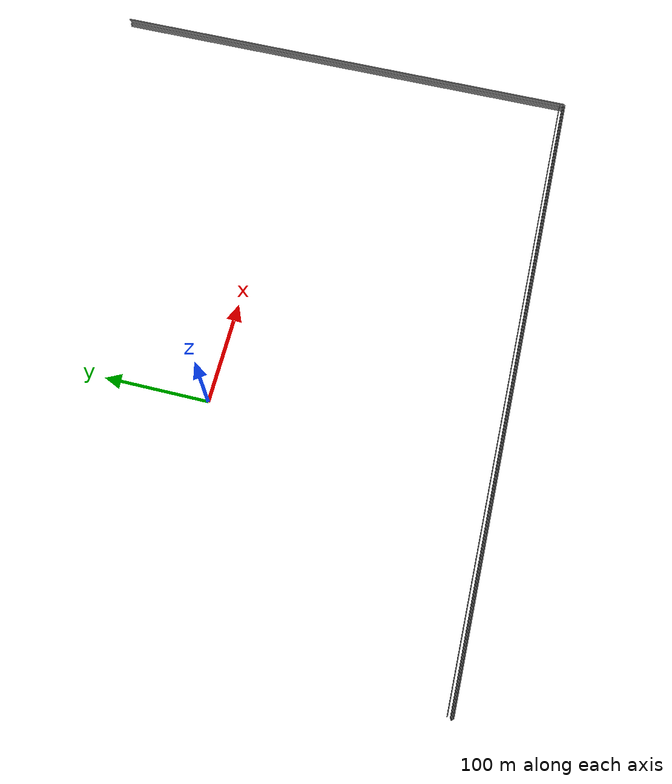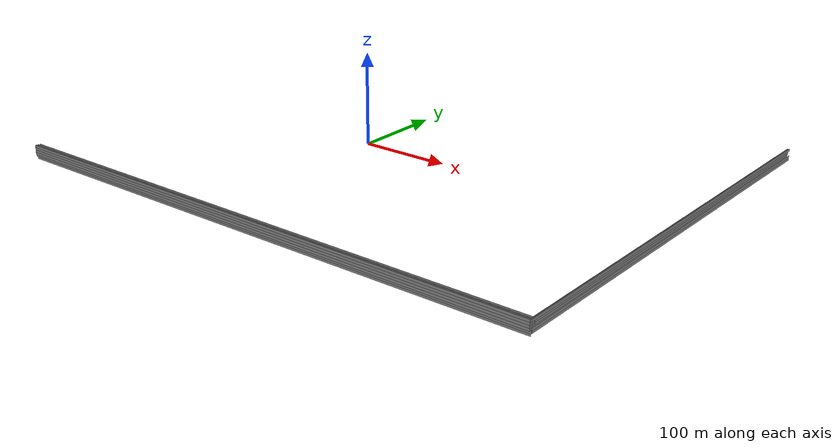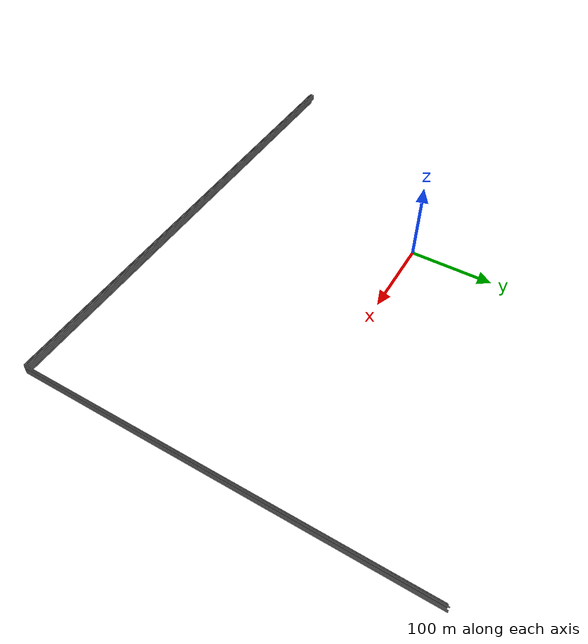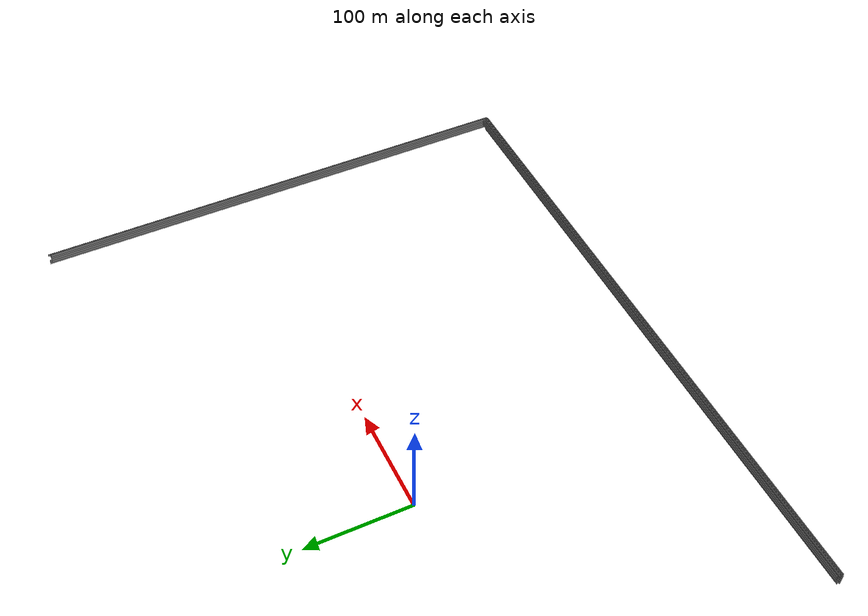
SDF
<sdf version="1.6">
 <model name="10floor">
  <pose>-4881.98 1418.69 0 0 -0 0</pose>
  <link name="Wall_106">
   <collision name="Wall_106_Collision">
    <geometry><box><size>596.75 0.15 2.5</size></box></geometry>
    <pose>0 0 1.25 0 -0 0</pose>
   </collision>
   <visual name="Wall_106_Visual">
    <pose>0 0 1.25 0 -0 0</pose>
    <geometry><box><size>596.75 0.15 2.5</size></box></geometry>
    <material>
     <script><uri>file://media/materials/scripts/gazebo.material</uri><name>Gazebo/Grey</name></script>
     <ambient>1 1 1 1</ambient>
    </material>
    <meta><layer>9</layer></meta>
   </visual>
   <pose>4967.02 -1683.41 22.5 0 -0 3.14159</pose>
  </link>
  <link name="Wall_110">
   <collision name="Wall_110_Collision">
    <geometry><box><size>464.5 0.15 2.5</size></box></geometry>
    <pose>0 0 1.25 0 -0 0</pose>
   </collision>
   <visual name="Wall_110_Visual">
    <pose>0 0 1.25 0 -0 0</pose>
    <geometry><box><size>464.5 0.15 2.5</size></box></geometry>
    <material>
     <script><uri>file://media/materials/scripts/gazebo.material</uri><name>Gazebo/Grey</name></script>
     <ambient>1 1 1 1</ambient>
    </material>
    <meta><layer>9</layer></meta>
   </visual>
   <pose>5266.3 -1451.8 22.5 0 -0 -1.5708</pose>
  </link>
  <link name="Wall_111">
   <collision name="Wall_111_Collision">
    <geometry><box><size>599.25 0.15 2.5</size></box></geometry>
    <pose>0 0 1.25 0 -0 0</pose>
   </collision>
   <visual name="Wall_111_Visual">
    <pose>0 0 1.25 0 -0 0</pose>
    <geometry><box><size>599.25 0.15 2.5</size></box></geometry>
    <material>
     <script><uri>file://media/materials/scripts/gazebo.material</uri><name>Gazebo/Grey</name></script>
     <ambient>1 1 1 1</ambient>
    </material>
    <meta><layer>9</layer></meta>
   </visual>
   <pose>4966.75 -1683.98 22.5 0 -0 3.14159</pose>
  </link>
  <link name="Wall_115">
   <collision name="Wall_115_Collision">
    <geometry><box><size>464 0.15 2.5</size></box></geometry>
    <pose>0 0 1.25 0 -0 0</pose>
   </collision>
   <visual name="Wall_115_Visual">
    <pose>0 0 1.25 0 -0 0</pose>
    <geometry><box><size>464 0.15 2.5</size></box></geometry>
    <material>
     <script><uri>file://media/materials/scripts/gazebo.material</uri><name>Gazebo/Grey</name></script>
     <ambient>1 1 1 1</ambient>
    </material>
    <meta><layer>9</layer></meta>
   </visual>
   <pose>5265.12 -1453.26 22.5 0 -0 -1.5708</pose>
  </link>
  <link name="Wall_116">
   <collision name="Wall_116_Collision">
    <geometry><box><size>597 0.15 2.5</size></box></geometry>
    <pose>0 0 1.25 0 -0 0</pose>
   </collision>
   <visual name="Wall_116_Visual">
    <pose>0 0 1.25 0 -0 0</pose>
    <geometry><box><size>597 0.15 2.5</size></box></geometry>
    <material>
     <script><uri>file://media/materials/scripts/gazebo.material</uri><name>Gazebo/Grey</name></script>
     <ambient>1 1 1 1</ambient>
    </material>
    <meta><layer>9</layer></meta>
   </visual>
   <pose>4966.69 -1685.19 22.5 0 -0 3.14159</pose>
  </link>
  <link name="Wall_120">
   <collision name="Wall_120_Collision">
    <geometry><box><size>597.5 0.15 2.5</size></box></geometry>
    <pose>0 0 1.25 0 -0 0</pose>
   </collision>
   <visual name="Wall_120_Visual">
    <pose>0 0 1.25 0 -0 0</pose>
    <geometry><box><size>597.5 0.15 2.5</size></box></geometry>
    <material>
     <script><uri>file://media/materials/scripts/gazebo.material</uri><name>Gazebo/Grey</name></script>
     <ambient>1 1 1 1</ambient>
    </material>
    <meta><layer>9</layer></meta>
   </visual>
   <pose>4967.62 -1679.94 22.5 0 -0 3.14159</pose>
  </link>
  <link name="Wall_123">
   <collision name="Wall_123_Collision">
    <geometry><box><size>461.75 0.15 2.5</size></box></geometry>
    <pose>0 0 1.25 0 -0 0</pose>
   </collision>
   <visual name="Wall_123_Visual">
    <pose>0 0 1.25 0 -0 0</pose>
    <geometry><box><size>461.75 0.15 2.5</size></box></geometry>
    <material>
     <script><uri>file://media/materials/scripts/gazebo.material</uri><name>Gazebo/Grey</name></script>
     <ambient>1 1 1 1</ambient>
    </material>
    <meta><layer>9</layer></meta>
   </visual>
   <pose>5265.68 -1452.14 22.5 0 -0 -1.5708</pose>
  </link>
  <link name="Wall_124">
   <collision name="Wall_124_Collision">
    <geometry><box><size>597 0.15 2.5</size></box></geometry>
    <pose>0 0 1.25 0 -0 0</pose>
   </collision>
   <visual name="Wall_124_Visual">
    <pose>0 0 1.25 0 -0 0</pose>
    <geometry><box><size>597 0.15 2.5</size></box></geometry>
    <material>
     <script><uri>file://media/materials/scripts/gazebo.material</uri><name>Gazebo/Grey</name></script>
     <ambient>1 1 1 1</ambient>
    </material>
    <meta><layer>9</layer></meta>
   </visual>
   <pose>4967.26 -1682.94 22.5 0 -0 3.14159</pose>
  </link>
  <link name="Wall_127">
   <collision name="Wall_127_Collision">
    <geometry><box><size>460.5 0.15 2.5</size></box></geometry>
    <pose>0 0 1.25 0 -0 0</pose>
   </collision>
   <visual name="Wall_127_Visual">
    <pose>0 0 1.25 0 -0 0</pose>
    <geometry><box><size>460.5 0.15 2.5</size></box></geometry>
    <material>
     <script><uri>file://media/materials/scripts/gazebo.material</uri><name>Gazebo/Grey</name></script>
     <ambient>1 1 1 1</ambient>
    </material>
    <meta><layer>9</layer></meta>
   </visual>
   <pose>5264.68 -1452.08 22.5 0 -0 -1.5708</pose>
  </link>
  <link name="Wall_128">
   <collision name="Wall_128_Collision">
    <geometry><box><size>596.5 0.15 2.5</size></box></geometry>
    <pose>0 0 1.25 0 -0 0</pose>
   </collision>
   <visual name="Wall_128_Visual">
    <pose>0 0 1.25 0 -0 0</pose>
    <geometry><box><size>596.5 0.15 2.5</size></box></geometry>
    <material>
     <script><uri>file://media/materials/scripts/gazebo.material</uri><name>Gazebo/Grey</name></script>
     <ambient>1 1 1 1</ambient>
    </material>
    <meta><layer>9</layer></meta>
   </visual>
   <pose>4966.51 -1682.26 22.5 0 -0 3.14159</pose>
  </link>
  <link name="Wall_17">
   <collision name="Wall_17_Collision">
    <geometry><box><size>596.75 0.15 2.5</size></box></geometry>
    <pose>0 0 1.25 0 -0 0</pose>
   </collision>
   <visual name="Wall_17_Visual">
    <pose>0 0 1.25 0 -0 0</pose>
    <geometry><box><size>596.75 0.15 2.5</size></box></geometry>
    <material>
     <script><uri>file://media/materials/scripts/gazebo.material</uri><name>Gazebo/Grey</name></script>
     <ambient>1 1 1 1</ambient>
    </material>
    <meta><layer>4</layer></meta>
   </visual>
   <pose>4967.02 -1683.41 10 0 -0 3.14159</pose>
  </link>
  <link name="Wall_26">
   <collision name="Wall_26_Collision">
    <geometry><box><size>596.75 0.15 2.5</size></box></geometry>
    <pose>0 0 1.25 0 -0 0</pose>
   </collision>
   <visual name="Wall_26_Visual">
    <pose>0 0 1.25 0 -0 0</pose>
    <geometry><box><size>596.75 0.15 2.5</size></box></geometry>
    <material>
     <script><uri>file://media/materials/scripts/gazebo.material</uri><name>Gazebo/Grey</name></script>
     <ambient>1 1 1 1</ambient>
    </material>
    <meta><layer>5</layer></meta>
   </visual>
   <pose>4967.02 -1683.41 12.5 0 -0 3.14159</pose>
  </link>
  <link name="Wall_30">
   <collision name="Wall_30_Collision">
    <geometry><box><size>464.5 0.15 2.5</size></box></geometry>
    <pose>0 0 1.25 0 -0 0</pose>
   </collision>
   <visual name="Wall_30_Visual">
    <pose>0 0 1.25 0 -0 0</pose>
    <geometry><box><size>464.5 0.15 2.5</size></box></geometry>
    <material>
     <script><uri>file://media/materials/scripts/gazebo.material</uri><name>Gazebo/Grey</name></script>
     <ambient>1 1 1 1</ambient>
    </material>
    <meta><layer>5</layer></meta>
   </visual>
   <pose>5266.3 -1451.8 12.5 0 -0 -1.5708</pose>
  </link>
  <link name="Wall_31">
   <collision name="Wall_31_Collision">
    <geometry><box><size>599.25 0.15 2.5</size></box></geometry>
    <pose>0 0 1.25 0 -0 0</pose>
   </collision>
   <visual name="Wall_31_Visual">
    <pose>0 0 1.25 0 -0 0</pose>
    <geometry><box><size>599.25 0.15 2.5</size></box></geometry>
    <material>
     <script><uri>file://media/materials/scripts/gazebo.material</uri><name>Gazebo/Grey</name></script>
     <ambient>1 1 1 1</ambient>
    </material>
    <meta><layer>5</layer></meta>
   </visual>
   <pose>4966.75 -1683.98 12.5 0 -0 3.14159</pose>
  </link>
  <link name="Wall_40">
   <collision name="Wall_40_Collision">
    <geometry><box><size>596.75 0.15 2.5</size></box></geometry>
    <pose>0 0 1.25 0 -0 0</pose>
   </collision>
   <visual name="Wall_40_Visual">
    <pose>0 0 1.25 0 -0 0</pose>
    <geometry><box><size>596.75 0.15 2.5</size></box></geometry>
    <material>
     <script><uri>file://media/materials/scripts/gazebo.material</uri><name>Gazebo/Grey</name></script>
     <ambient>1 1 1 1</ambient>
    </material>
    <meta><layer>6</layer></meta>
   </visual>
   <pose>4967.02 -1683.41 15 0 -0 3.14159</pose>
  </link>
  <link name="Wall_44">
   <collision name="Wall_44_Collision">
    <geometry><box><size>464.5 0.15 2.5</size></box></geometry>
    <pose>0 0 1.25 0 -0 0</pose>
   </collision>
   <visual name="Wall_44_Visual">
    <pose>0 0 1.25 0 -0 0</pose>
    <geometry><box><size>464.5 0.15 2.5</size></box></geometry>
    <material>
     <script><uri>file://media/materials/scripts/gazebo.material</uri><name>Gazebo/Grey</name></script>
     <ambient>1 1 1 1</ambient>
    </material>
    <meta><layer>6</layer></meta>
   </visual>
   <pose>5266.3 -1451.8 15 0 -0 -1.5708</pose>
  </link>
  <link name="Wall_45">
   <collision name="Wall_45_Collision">
    <geometry><box><size>599.25 0.15 2.5</size></box></geometry>
    <pose>0 0 1.25 0 -0 0</pose>
   </collision>
   <visual name="Wall_45_Visual">
    <pose>0 0 1.25 0 -0 0</pose>
    <geometry><box><size>599.25 0.15 2.5</size></box></geometry>
    <material>
     <script><uri>file://media/materials/scripts/gazebo.material</uri><name>Gazebo/Grey</name></script>
     <ambient>1 1 1 1</ambient>
    </material>
    <meta><layer>6</layer></meta>
   </visual>
   <pose>4966.75 -1683.98 15 0 -0 3.14159</pose>
  </link>
  <link name="Wall_49">
   <collision name="Wall_49_Collision">
    <geometry><box><size>464 0.15 2.5</size></box></geometry>
    <pose>0 0 1.25 0 -0 0</pose>
   </collision>
   <visual name="Wall_49_Visual">
    <pose>0 0 1.25 0 -0 0</pose>
    <geometry><box><size>464 0.15 2.5</size></box></geometry>
    <material>
     <script><uri>file://media/materials/scripts/gazebo.material</uri><name>Gazebo/Grey</name></script>
     <ambient>1 1 1 1</ambient>
    </material>
    <meta><layer>6</layer></meta>
   </visual>
   <pose>5265.12 -1453.26 15 0 -0 -1.5708</pose>
  </link>
  <link name="Wall_50">
   <collision name="Wall_50_Collision">
    <geometry><box><size>597 0.15 2.5</size></box></geometry>
    <pose>0 0 1.25 0 -0 0</pose>
   </collision>
   <visual name="Wall_50_Visual">
    <pose>0 0 1.25 0 -0 0</pose>
    <geometry><box><size>597 0.15 2.5</size></box></geometry>
    <material>
     <script><uri>file://media/materials/scripts/gazebo.material</uri><name>Gazebo/Grey</name></script>
     <ambient>1 1 1 1</ambient>
    </material>
    <meta><layer>6</layer></meta>
   </visual>
   <pose>4966.69 -1685.19 15 0 -0 3.14159</pose>
  </link>
  <link name="Wall_58">
   <collision name="Wall_58_Collision">
    <geometry><box><size>596.75 0.15 2.5</size></box></geometry>
    <pose>0 0 1.25 0 -0 0</pose>
   </collision>
   <visual name="Wall_58_Visual">
    <pose>0 0 1.25 0 -0 0</pose>
    <geometry><box><size>596.75 0.15 2.5</size></box></geometry>
    <material>
     <script><uri>file://media/materials/scripts/gazebo.material</uri><name>Gazebo/Grey</name></script>
     <ambient>1 1 1 1</ambient>
    </material>
    <meta><layer>7</layer></meta>
   </visual>
   <pose>4967.02 -1683.41 17.5 0 -0 3.14159</pose>
  </link>
  <link name="Wall_63">
   <collision name="Wall_63_Collision">
    <geometry><box><size>599.25 0.15 2.5</size></box></geometry>
    <pose>0 0 1.25 0 -0 0</pose>
   </collision>
   <visual name="Wall_63_Visual">
    <pose>0 0 1.25 0 -0 0</pose>
    <geometry><box><size>599.25 0.15 2.5</size></box></geometry>
    <material>
     <script><uri>file://media/materials/scripts/gazebo.material</uri><name>Gazebo/Grey</name></script>
     <ambient>1 1 1 1</ambient>
    </material>
    <meta><layer>7</layer></meta>
   </visual>
   <pose>4966.75 -1683.98 17.5 0 -0 3.14159</pose>
  </link>
  <link name="Wall_67">
   <collision name="Wall_67_Collision">
    <geometry><box><size>464 0.15 2.5</size></box></geometry>
    <pose>0 0 1.25 0 -0 0</pose>
   </collision>
   <visual name="Wall_67_Visual">
    <pose>0 0 1.25 0 -0 0</pose>
    <geometry><box><size>464 0.15 2.5</size></box></geometry>
    <material>
     <script><uri>file://media/materials/scripts/gazebo.material</uri><name>Gazebo/Grey</name></script>
     <ambient>1 1 1 1</ambient>
    </material>
    <meta><layer>7</layer></meta>
   </visual>
   <pose>5265.12 -1453.26 17.5 0 -0 -1.5708</pose>
  </link>
  <link name="Wall_68">
   <collision name="Wall_68_Collision">
    <geometry><box><size>597 0.15 2.5</size></box></geometry>
    <pose>0 0 1.25 0 -0 0</pose>
   </collision>
   <visual name="Wall_68_Visual">
    <pose>0 0 1.25 0 -0 0</pose>
    <geometry><box><size>597 0.15 2.5</size></box></geometry>
    <material>
     <script><uri>file://media/materials/scripts/gazebo.material</uri><name>Gazebo/Grey</name></script>
     <ambient>1 1 1 1</ambient>
    </material>
    <meta><layer>7</layer></meta>
   </visual>
   <pose>4966.69 -1685.19 17.5 0 -0 3.14159</pose>
  </link>
  <link name="Wall_72">
   <collision name="Wall_72_Collision">
    <geometry><box><size>597.5 0.15 2.5</size></box></geometry>
    <pose>0 0 1.25 0 -0 0</pose>
   </collision>
   <visual name="Wall_72_Visual">
    <pose>0 0 1.25 0 -0 0</pose>
    <geometry><box><size>597.5 0.15 2.5</size></box></geometry>
    <material>
     <script><uri>file://media/materials/scripts/gazebo.material</uri><name>Gazebo/Grey</name></script>
     <ambient>1 1 1 1</ambient>
    </material>
    <meta><layer>7</layer></meta>
   </visual>
   <pose>4967.62 -1679.94 17.5 0 -0 3.14159</pose>
  </link>
  <link name="Wall_80">
   <collision name="Wall_80_Collision">
    <geometry><box><size>596.75 0.15 2.5</size></box></geometry>
    <pose>0 0 1.25 0 -0 0</pose>
   </collision>
   <visual name="Wall_80_Visual">
    <pose>0 0 1.25 0 -0 0</pose>
    <geometry><box><size>596.75 0.15 2.5</size></box></geometry>
    <material>
     <script><uri>file://media/materials/scripts/gazebo.material</uri><name>Gazebo/Grey</name></script>
     <ambient>1 1 1 1</ambient>
    </material>
    <meta><layer>8</layer></meta>
   </visual>
   <pose>4967.02 -1683.41 20 0 -0 3.14159</pose>
  </link>
  <link name="Wall_85">
   <collision name="Wall_85_Collision">
    <geometry><box><size>599.25 0.15 2.5</size></box></geometry>
    <pose>0 0 1.25 0 -0 0</pose>
   </collision>
   <visual name="Wall_85_Visual">
    <pose>0 0 1.25 0 -0 0</pose>
    <geometry><box><size>599.25 0.15 2.5</size></box></geometry>
    <material>
     <script><uri>file://media/materials/scripts/gazebo.material</uri><name>Gazebo/Grey</name></script>
     <ambient>1 1 1 1</ambient>
    </material>
    <meta><layer>8</layer></meta>
   </visual>
   <pose>4966.75 -1683.98 20 0 -0 3.14159</pose>
  </link>
  <link name="Wall_89">
   <collision name="Wall_89_Collision">
    <geometry><box><size>464 0.15 2.5</size></box></geometry>
    <pose>0 0 1.25 0 -0 0</pose>
   </collision>
   <visual name="Wall_89_Visual">
    <pose>0 0 1.25 0 -0 0</pose>
    <geometry><box><size>464 0.15 2.5</size></box></geometry>
    <material>
     <script><uri>file://media/materials/scripts/gazebo.material</uri><name>Gazebo/Grey</name></script>
     <ambient>1 1 1 1</ambient>
    </material>
    <meta><layer>8</layer></meta>
   </visual>
   <pose>5265.12 -1453.26 20 0 -0 -1.5708</pose>
  </link>
  <link name="Wall_90">
   <collision name="Wall_90_Collision">
    <geometry><box><size>597 0.15 2.5</size></box></geometry>
    <pose>0 0 1.25 0 -0 0</pose>
   </collision>
   <visual name="Wall_90_Visual">
    <pose>0 0 1.25 0 -0 0</pose>
    <geometry><box><size>597 0.15 2.5</size></box></geometry>
    <material>
     <script><uri>file://media/materials/scripts/gazebo.material</uri><name>Gazebo/Grey</name></script>
     <ambient>1 1 1 1</ambient>
    </material>
    <meta><layer>8</layer></meta>
   </visual>
   <pose>4966.69 -1685.19 20 0 -0 3.14159</pose>
  </link>
  <link name="Wall_94">
   <collision name="Wall_94_Collision">
    <geometry><box><size>597.5 0.15 2.5</size></box></geometry>
    <pose>0 0 1.25 0 -0 0</pose>
   </collision>
   <visual name="Wall_94_Visual">
    <pose>0 0 1.25 0 -0 0</pose>
    <geometry><box><size>597.5 0.15 2.5</size></box></geometry>
    <material>
     <script><uri>file://media/materials/scripts/gazebo.material</uri><name>Gazebo/Grey</name></script>
     <ambient>1 1 1 1</ambient>
    </material>
    <meta><layer>8</layer></meta>
   </visual>
   <pose>4967.62 -1679.94 20 0 -0 3.14159</pose>
  </link>
  <link name="Wall_97">
   <collision name="Wall_97_Collision">
    <geometry><box><size>461.75 0.15 2.5</size></box></geometry>
    <pose>0 0 1.25 0 -0 0</pose>
   </collision>
   <visual name="Wall_97_Visual">
    <pose>0 0 1.25 0 -0 0</pose>
    <geometry><box><size>461.75 0.15 2.5</size></box></geometry>
    <material>
     <script><uri>file://media/materials/scripts/gazebo.material</uri><name>Gazebo/Grey</name></script>
     <ambient>1 1 1 1</ambient>
    </material>
    <meta><layer>8</layer></meta>
   </visual>
   <pose>5265.68 -1452.14 20 0 -0 -1.5708</pose>
  </link>
  <link name="Wall_98">
   <collision name="Wall_98_Collision">
    <geometry><box><size>597 0.15 2.5</size></box></geometry>
    <pose>0 0 1.25 0 -0 0</pose>
   </collision>
   <visual name="Wall_98_Visual">
    <pose>0 0 1.25 0 -0 0</pose>
    <geometry><box><size>597 0.15 2.5</size></box></geometry>
    <material>
     <script><uri>file://media/materials/scripts/gazebo.material</uri><name>Gazebo/Grey</name></script>
     <ambient>1 1 1 1</ambient>
    </material>
    <meta><layer>8</layer></meta>
   </visual>
   <pose>4967.26 -1682.94 20 0 -0 3.14159</pose>
  </link>
  <static>1</static>
 </model>
</sdf>
